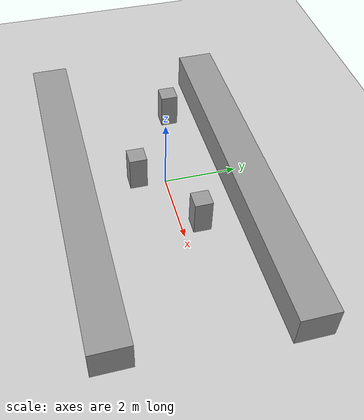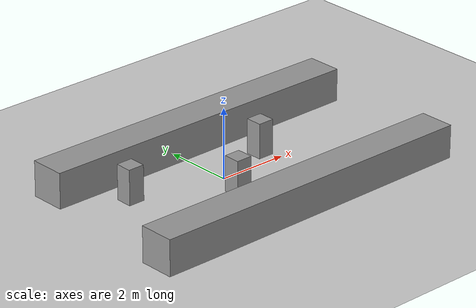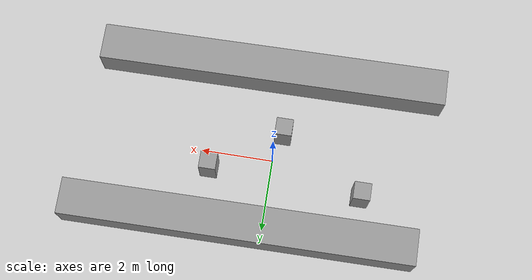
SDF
<sdf version="1.7">
 <world name="default">
  <light name="sun" type="directional">
   <pose>0 0 10 0 -0 0</pose>
   <diffuse>0.8 0.8 0.8 1</diffuse>
   <specular>0.2 0.2 0.2 1</specular>
   <attenuation>
    <range>1000</range>
    <constant>0.9</constant>
    <linear>0.01</linear>
    <quadratic>0.001</quadratic>
   </attenuation>
   <direction>-0.5 0.1 -0.9</direction>
   <spot><inner_angle>0</inner_angle><outer_angle>0</outer_angle><falloff>0</falloff></spot>
  </light>
  <model name="ground_plane">
   <static>1</static>
   <link name="link">
    <collision name="collision">
     <geometry><plane><normal>0 0 1</normal><size>100 100</size></plane></geometry>
     <surface><friction><ode><mu>100</mu><mu2>50</mu2></ode></friction></surface>
    </collision>
    <visual name="visual">
     <cast_shadows>0</cast_shadows>
     <geometry><plane><normal>0 0 1</normal><size>100 100</size></plane></geometry>
     <material>
      <script><uri>file://media/materials/scripts/gazebo.material</uri><name>Gazebo/Grey</name></script>
     </material>
    </visual>
   </link>
  </model>
  <gravity>0 0 -9.8</gravity>
  <magnetic_field>6e-06 2.3e-05 -4.2e-05</magnetic_field>
  <atmosphere type="adiabatic"/>
  <physics type="ode">
   <max_step_size>0.001</max_step_size>
   <real_time_factor>1</real_time_factor>
   <real_time_update_rate>1000</real_time_update_rate>
  </physics>
  <scene><ambient>0.4 0.4 0.4 1</ambient><background>0.7 0.7 0.7 1</background><shadows>1</shadows></scene>
  <spherical_coordinates>
   <surface_model>EARTH_WGS84</surface_model>
   <latitude_deg>0</latitude_deg>
   <longitude_deg>0</longitude_deg>
   <elevation>0</elevation>
   <heading_deg>0</heading_deg>
  </spherical_coordinates>
  <model name="unit_box">
   <pose>0.362527 -2.52788 0.462242 4.5e-05 0.007816 0.005817</pose>
   <link name="link">
    <inertial>
     <mass>1</mass>
     <inertia>
      <ixx>0.166667</ixx>
      <ixy>0</ixy>
      <ixz>0</ixz>
      <iyy>0.166667</iyy>
      <iyz>0</iyz>
      <izz>0.166667</izz>
     </inertia>
    </inertial>
    <collision name="collision"><geometry><box><size>9.68428 1 1</size></box></geometry></collision>
    <visual name="visual">
     <geometry><box><size>9.68428 1 1</size></box></geometry>
     <material>
      <script><name>Gazebo/Grey</name><uri>file://media/materials/scripts/gazebo.material</uri></script>
     </material>
    </visual>
   </link>
  </model>
  <model name="unit_box_clone">
   <pose>0.666009 2.02035 0.462242 4.5e-05 0.007816 0.005817</pose>
   <link name="link">
    <inertial>
     <mass>1</mass>
     <inertia>
      <ixx>0.166667</ixx>
      <ixy>0</ixy>
      <ixz>0</ixz>
      <iyy>0.166667</iyy>
      <iyz>0</iyz>
      <izz>0.166667</izz>
     </inertia>
    </inertial>
    <collision name="collision"><geometry><box><size>9.68428 1 1</size></box></geometry></collision>
    <visual name="visual">
     <geometry><box><size>9.68428 1 1</size></box></geometry>
     <material>
      <script><name>Gazebo/Grey</name><uri>file://media/materials/scripts/gazebo.material</uri></script>
     </material>
    </visual>
   </link>
  </model>
  <model name="unit_box_0">
   <pose>1.70077 0.491776 0.499998 -2e-06 -6e-06 -5e-06</pose>
   <link name="link">
    <inertial>
     <mass>1</mass>
     <inertia>
      <ixx>0.166667</ixx>
      <ixy>0</ixy>
      <ixz>0</ixz>
      <iyy>0.166667</iyy>
      <iyz>0</iyz>
      <izz>0.166667</izz>
     </inertia>
    </inertial>
    <collision name="collision"><geometry><box><size>0.465173 0.471448 1</size></box></geometry></collision>
    <visual name="visual">
     <geometry><box><size>0.465173 0.471448 1</size></box></geometry>
     <material>
      <script><name>Gazebo/Grey</name><uri>file://media/materials/scripts/gazebo.material</uri></script>
     </material>
    </visual>
   </link>
  </model>
  <model name="unit_box_0_clone">
   <pose>-0.197742 -0.758455 0.500001 -2e-06 -0 -7e-06</pose>
   <link name="link">
    <inertial>
     <mass>1</mass>
     <inertia>
      <ixx>0.166667</ixx>
      <ixy>0</ixy>
      <ixz>0</ixz>
      <iyy>0.166667</iyy>
      <iyz>0</iyz>
      <izz>0.166667</izz>
     </inertia>
    </inertial>
    <collision name="collision"><geometry><box><size>0.465173 0.471448 1</size></box></geometry></collision>
    <visual name="visual">
     <geometry><box><size>0.465173 0.471448 1</size></box></geometry>
     <material>
      <script><name>Gazebo/Grey</name><uri>file://media/materials/scripts/gazebo.material</uri></script>
     </material>
    </visual>
   </link>
  </model>
  <model name="unit_box_0_clone_0">
   <pose>-2.53657 0.695702 0.499999 1e-06 -3e-06 -1.2e-05</pose>
   <link name="link">
    <inertial>
     <mass>1</mass>
     <inertia>
      <ixx>0.166667</ixx>
      <ixy>0</ixy>
      <ixz>0</ixz>
      <iyy>0.166667</iyy>
      <iyz>0</iyz>
      <izz>0.166667</izz>
     </inertia>
    </inertial>
    <collision name="collision"><geometry><box><size>0.465173 0.471448 1</size></box></geometry></collision>
    <visual name="visual">
     <geometry><box><size>0.465173 0.471448 1</size></box></geometry>
     <material>
      <script><name>Gazebo/Grey</name><uri>file://media/materials/scripts/gazebo.material</uri></script>
     </material>
    </visual>
   </link>
  </model>
 </world>
</sdf>
